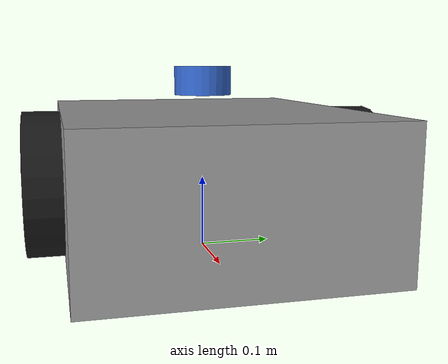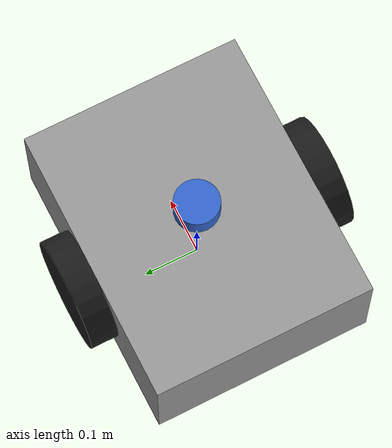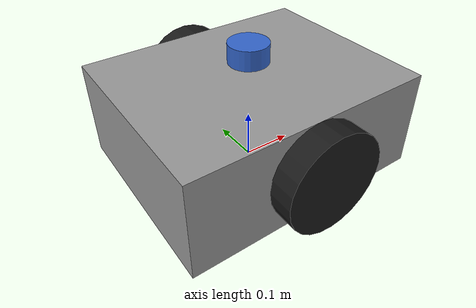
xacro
<?xml version="1.0"?>
<robot name="warehouse_robot" xmlns:xacro="http://www.ros.org/wiki/xacro">

  <xacro:property name="base_length" value="0.5"/>
  <xacro:property name="base_width"  value="0.4"/>
  <xacro:property name="base_height" value="0.2"/>
  <xacro:property name="wheel_radius" value="0.1"/>
  <xacro:property name="wheel_width"  value="0.05"/>
  <xacro:property name="caster_radius" value="0.05"/>

  <material name="grey"><color rgba="0.6 0.6 0.6 1.0"/></material>
  <material name="black"><color rgba="0.1 0.1 0.1 1.0"/></material>
  <material name="blue"><color rgba="0.2 0.4 0.8 1.0"/></material>

  <link name="base_footprint"/>

  <joint name="base_footprint_joint" type="fixed">
    <parent link="base_footprint"/>
    <child  link="base_link"/>
    <origin xyz="0 0 ${wheel_radius}" rpy="0 0 0"/>
  </joint>

  <link name="base_link">
    <visual>
      <geometry><box size="${base_length} ${base_width} ${base_height}"/></geometry>
      <material name="grey"/>
    </visual>
    <collision>
      <geometry><box size="${base_length} ${base_width} ${base_height}"/></geometry>
    </collision>
    <inertial>
      <mass value="20.0"/>
      <origin xyz="0 0 0" rpy="0 0 0"/>
      <inertia ixx="0.5" ixy="0.0" ixz="0.0" iyy="0.5" iyz="0.0" izz="0.8"/>
    </inertial>
  </link>

  <link name="left_wheel">
    <visual>
      <geometry><cylinder radius="${wheel_radius}" length="${wheel_width}"/></geometry>
      <material name="black"/>
    </visual>
    <collision>
      <geometry><cylinder radius="${wheel_radius}" length="${wheel_width}"/></geometry>
    </collision>
    <inertial>
      <mass value="2.0"/>
      <origin xyz="0 0 0" rpy="0 0 0"/>
      <inertia ixx="0.01" ixy="0.0" ixz="0.0" iyy="0.01" iyz="0.0" izz="0.01"/>
    </inertial>
  </link>

  <joint name="left_wheel_joint" type="continuous">
    <parent link="base_link"/>
    <child  link="left_wheel"/>
    <origin xyz="0 ${base_width/2 + wheel_width/2} 0" rpy="-1.5708 0 0"/>
    <axis xyz="0 0 1"/>
  </joint>

  <link name="right_wheel">
    <visual>
      <geometry><cylinder radius="${wheel_radius}" length="${wheel_width}"/></geometry>
      <material name="black"/>
    </visual>
    <collision>
      <geometry><cylinder radius="${wheel_radius}" length="${wheel_width}"/></geometry>
    </collision>
    <inertial>
      <mass value="2.0"/>
      <origin xyz="0 0 0" rpy="0 0 0"/>
      <inertia ixx="0.01" ixy="0.0" ixz="0.0" iyy="0.01" iyz="0.0" izz="0.01"/>
    </inertial>
  </link>

  <joint name="right_wheel_joint" type="continuous">
    <parent link="base_link"/>
    <child  link="right_wheel"/>
    <origin xyz="0 -${base_width/2 + wheel_width/2} 0" rpy="-1.5708 0 0"/>
    <axis xyz="0 0 1"/>
  </joint>

  <link name="caster_wheel">
    <visual>
      <geometry><sphere radius="${caster_radius}"/></geometry>
      <material name="black"/>
    </visual>
    <collision>
      <geometry><sphere radius="${caster_radius}"/></geometry>
    </collision>
    <inertial>
      <mass value="1.0"/>
      <origin xyz="0 0 0" rpy="0 0 0"/>
      <inertia ixx="0.001" ixy="0.0" ixz="0.0" iyy="0.001" iyz="0.0" izz="0.001"/>
    </inertial>
  </link>

  <joint name="caster_wheel_joint" type="fixed">
    <parent link="base_link"/>
    <child  link="caster_wheel"/>
    <origin xyz="${base_length/2 - caster_radius} 0 -${base_height/2 - caster_radius}" rpy="0 0 0"/>
  </joint>

  <link name="caster_wheel_back">
    <visual>
      <geometry><sphere radius="${caster_radius}"/></geometry>
      <material name="black"/>
    </visual>
    <collision>
      <geometry><sphere radius="${caster_radius}"/></geometry>
    </collision>
    <inertial>
      <mass value="1.0"/>
      <origin xyz="0 0 0" rpy="0 0 0"/>
      <inertia ixx="0.001" ixy="0.0" ixz="0.0" iyy="0.001" iyz="0.0" izz="0.001"/>
    </inertial>
  </link>

  <joint name="caster_wheel_back_joint" type="fixed">
    <parent link="base_link"/>
    <child  link="caster_wheel_back"/>
    <origin xyz="-${base_length/2 - caster_radius} 0 -${base_height/2 - caster_radius}" rpy="0 0 0"/>
  </joint>

  <link name="laser_frame">
    <visual>
      <geometry><cylinder radius="0.04" length="0.04"/></geometry>
      <material name="blue"/>
    </visual>
    <collision>
      <geometry><cylinder radius="0.04" length="0.04"/></geometry>
    </collision>
    <inertial>
      <mass value="0.1"/>
      <inertia ixx="0.0001" ixy="0.0" ixz="0.0" iyy="0.0001" iyz="0.0" izz="0.0001"/>
    </inertial>
  </link>

  <joint name="laser_joint" type="fixed">
    <parent link="base_link"/>
    <child  link="laser_frame"/>
    <origin xyz="0 0 ${base_height/2 + 0.04}" rpy="0 0 0"/>
  </joint>

  <gazebo>
    <plugin filename="gz-sim-diff-drive-system"
            name="gz::sim::systems::DiffDrive">
      <left_joint>left_wheel_joint</left_joint>
      <right_joint>right_wheel_joint</right_joint>
      <wheel_separation>${base_width + wheel_width}</wheel_separation>
      <wheel_radius>${wheel_radius}</wheel_radius>
      <odom_publish_frequency>20</odom_publish_frequency>
      <topic>/cmd_vel</topic>
      <odom_topic>/odom</odom_topic>
      <frame_id>odom</frame_id>
      <child_frame_id>base_footprint</child_frame_id>
      <max_linear_acceleration>1.0</max_linear_acceleration>
    </plugin>
  </gazebo>

  <gazebo>
    <plugin filename="gz-sim-joint-state-publisher-system"
            name="gz::sim::systems::JointStatePublisher">
      <joint_name>left_wheel_joint</joint_name>
      <joint_name>right_wheel_joint</joint_name>
    </plugin>
  </gazebo>

  <gazebo reference="laser_frame">
    <sensor name="lidar" type="gpu_lidar">
      <pose>0 0 0 0 0 0</pose>
      <topic>/scan</topic>
      <update_rate>10</update_rate>
      <lidar>
        <scan>
          <horizontal>
            <samples>360</samples>
            <resolution>1</resolution>
            <min_angle>-3.14159</min_angle>
            <max_angle>3.14159</max_angle>
          </horizontal>
        </scan>
        <range>
          <min>0.12</min>
          <max>10.0</max>
          <resolution>0.01</resolution>
        </range>
      </lidar>
      <always_on>true</always_on>
      <visualize>true</visualize>
    </sensor>
  </gazebo>

  <gazebo>
    <plugin filename="gz-sim-sensors-system"
            name="gz::sim::systems::Sensors">
      <render_engine>ogre</render_engine>
    </plugin>
  </gazebo>

  <gazebo reference="base_link">
    <mu1>0.2</mu1>
    <mu2>0.2</mu2>
    <material>Gazebo/Grey</material>
  </gazebo>

  <gazebo reference="left_wheel">
    <mu1>2.0</mu1>
    <mu2>2.0</mu2>
    <kp>1000000.0</kp>
    <kd>100.0</kd>
    <material>Gazebo/Black</material>
  </gazebo>

  <gazebo reference="right_wheel">
    <mu1>2.0</mu1>
    <mu2>2.0</mu2>
    <kp>1000000.0</kp>
    <kd>100.0</kd>
    <material>Gazebo/Black</material>
  </gazebo>

  <gazebo reference="caster_wheel">
    <mu1>0.0</mu1>
    <mu2>0.0</mu2>
    <kp>1000000.0</kp>
    <kd>100.0</kd>
    <material>Gazebo/Black</material>
  </gazebo>

  <gazebo reference="caster_wheel_back">
    <mu1>0.0</mu1>
    <mu2>0.0</mu2>
    <kp>1000000.0</kp>
    <kd>100.0</kd>
    <material>Gazebo/Black</material>
  </gazebo>

  <gazebo reference="laser_frame">
    <material>Gazebo/Blue</material>
  </gazebo>

</robot>
